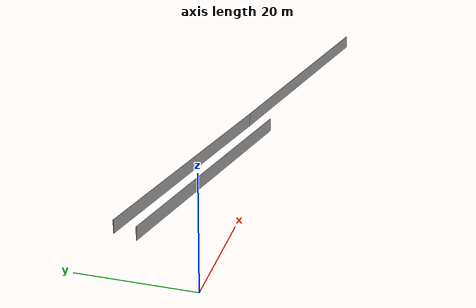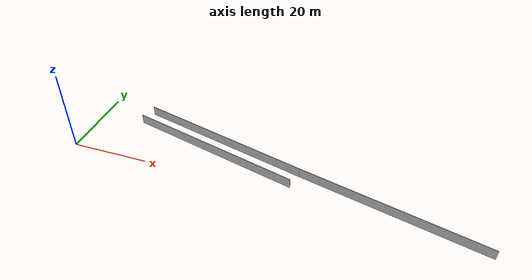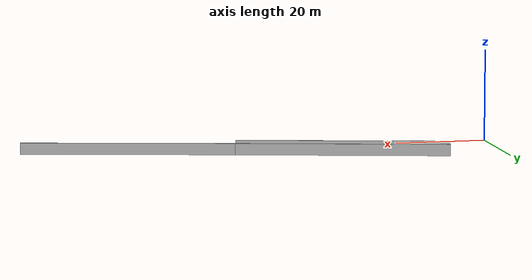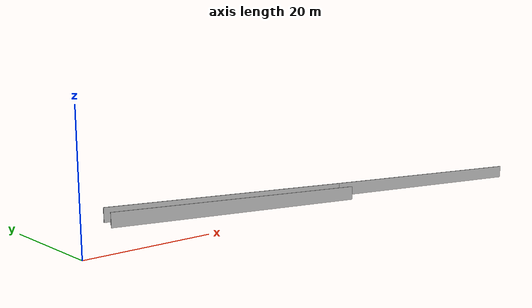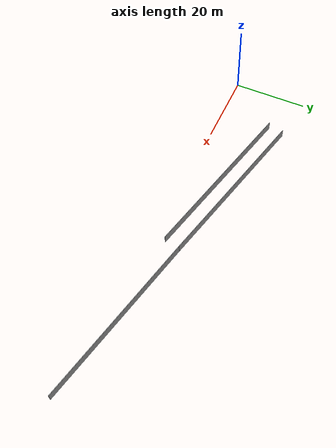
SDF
<?xml version="1.0" ?>
<sdf version="1.6">
  <model name="sps_0803">
    <pose frame="">0 0 0 0 -0 0</pose>
    <static>1</static>
    <self_collide>0</self_collide>
    <allow_auto_disable>0</allow_auto_disable>
    <link name="Wall6629">
      <kinematic>0</kinematic>
      <gravity>1</gravity>
      <self_collide>0</self_collide>
      <collision name="collision">
        <geometry>
          <box>
            <size>45.9415 0.15 2.5</size>
          </box>
        </geometry>
        <pose frame="">0 0 0 0 -0 0</pose>
      </collision>
      <visual name="visual">
        <geometry>
          <box>
            <size>45.9415 0.15 2.5</size>
          </box>
        </geometry>
        <pose frame="">0 0 0 0 -0 0</pose>
        <cast_shadows>1</cast_shadows>
        <transparency>0.0</transparency>
      </visual>
      <pose frame="">33.9774 8.61281 1.25 0 -0 2.90503</pose>
    </link>
    <link name="Wall9382">
      <kinematic>0</kinematic>
      <gravity>1</gravity>
      <self_collide>0</self_collide>
      <collision name="collision">
        <geometry>
          <box>
            <size>45.8818 0.15 2.5</size>
          </box>
        </geometry>
        <pose frame="">0 0 0 0 -0 0</pose>
      </collision>
      <visual name="visual">
        <geometry>
          <box>
            <size>45.8818 0.15 2.5</size>
          </box>
        </geometry>
        <pose frame="">0 0 0 0 -0 0</pose>
        <cast_shadows>1</cast_shadows>
        <transparency>0.0</transparency>
      </visual>
      <pose frame="">79.6707 2.41948 1.25 0 -0 2.9176</pose>
    </link>
    <link name="Wall9383">
      <kinematic>0</kinematic>
      <gravity>1</gravity>
      <self_collide>0</self_collide>
      <collision name="collision">
        <geometry>
          <box>
            <size>45.8819 0.15 2.5</size>
          </box>
        </geometry>
        <pose frame="">0 0 0 0 -0 0</pose>
      </collision>
      <visual name="visual">
        <geometry>
          <box>
            <size>45.8819 0.15 2.5</size>
          </box>
        </geometry>
        <pose frame="">0 0 0 0 -0 0</pose>
        <cast_shadows>1</cast_shadows>
        <transparency>0.0</transparency>
      </visual>
      <pose frame="">35.0009 12.8919 1.25 0 -0 2.90502</pose>
    </link>
  </model>
</sdf>
